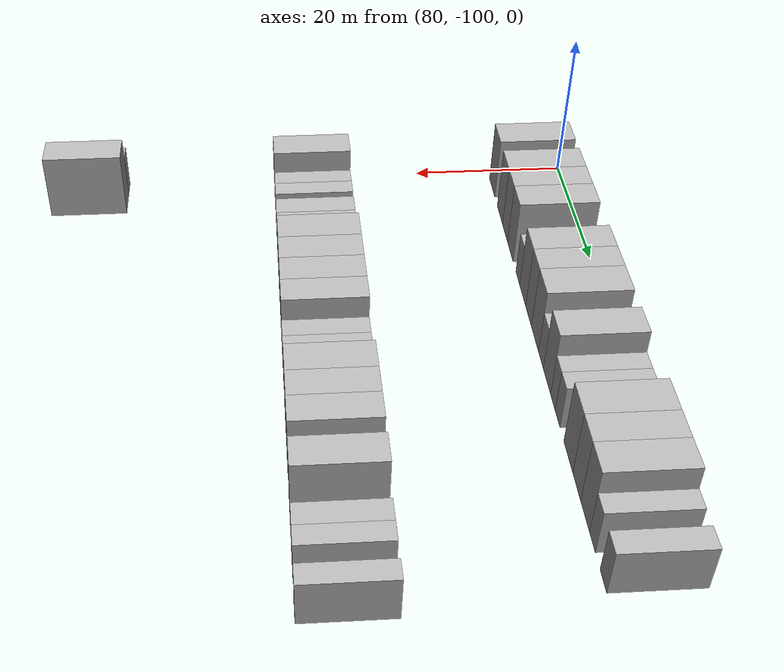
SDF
<sdf version="1.6">
 <world name="default">
  <model name="building_573">
   <static>1</static>
   <pose>85.0000 -95.9384 0 0.000000 0.000000 0.000000</pose>
   <link name="link">
    <pose>0 0 4.50 0 0 0</pose>
    <collision name="collision"><geometry><box><size>10.0000 4.3819 9.0000</size></box></geometry></collision>
    <visual name="visual">
     <cast_shadows>0</cast_shadows>
     <geometry><box><size>10.0000 4.3819 9.0000</size></box></geometry>
     <material>
      <script>
       <uri>model://HANNAS_wall/materials/scripts</uri>
       <uri>model://HANNAS_wall/materials/textures</uri>
       <name>vrc/HANNAS_wall</name>
      </script>
     </material>
    </visual>
   </link>
  </model>
  <model name="building_574">
   <static>1</static>
   <pose>85.0000 -89.6862 0 0.000000 0.000000 0.000000</pose>
   <link name="link">
    <pose>0 0 4.50 0 0 0</pose>
    <collision name="collision"><geometry><box><size>10.0000 4.1224 9.0000</size></box></geometry></collision>
    <visual name="visual">
     <cast_shadows>0</cast_shadows>
     <geometry><box><size>10.0000 4.1224 9.0000</size></box></geometry>
     <material>
      <script>
       <uri>model://HANNAS_wall/materials/scripts</uri>
       <uri>model://HANNAS_wall/materials/textures</uri>
       <name>vrc/HANNAS_wall</name>
      </script>
     </material>
    </visual>
   </link>
  </model>
  <model name="building_575">
   <static>1</static>
   <pose>85.0000 -85.7247 0 0.000000 0.000000 0.000000</pose>
   <link name="link">
    <pose>0 0 4.50 0 0 0</pose>
    <collision name="collision"><geometry><box><size>10.0000 3.8007 9.0000</size></box></geometry></collision>
    <visual name="visual">
     <cast_shadows>0</cast_shadows>
     <geometry><box><size>10.0000 3.8007 9.0000</size></box></geometry>
     <material>
      <script>
       <uri>model://HANNAS_wall/materials/scripts</uri>
       <uri>model://HANNAS_wall/materials/textures</uri>
       <name>vrc/HANNAS_wall</name>
      </script>
     </material>
    </visual>
   </link>
  </model>
  <model name="building_576">
   <static>1</static>
   <pose>85.0000 -81.8043 0 0.000000 0.000000 0.000000</pose>
   <link name="link">
    <pose>0 0 4.50 0 0 0</pose>
    <collision name="collision"><geometry><box><size>10.0000 4.0400 9.0000</size></box></geometry></collision>
    <visual name="visual">
     <cast_shadows>0</cast_shadows>
     <geometry><box><size>10.0000 4.0400 9.0000</size></box></geometry>
     <material>
      <script>
       <uri>model://HANNAS_wall/materials/scripts</uri>
       <uri>model://HANNAS_wall/materials/textures</uri>
       <name>vrc/HANNAS_wall</name>
      </script>
     </material>
    </visual>
   </link>
  </model>
  <model name="building_577">
   <static>1</static>
   <pose>85.0000 -76.4784 0 0.000000 0.000000 0.000000</pose>
   <link name="link">
    <pose>0 0 3.00 0 0 0</pose>
    <collision name="collision"><geometry><box><size>10.0000 2.6119 6.0000</size></box></geometry></collision>
    <visual name="visual">
     <cast_shadows>0</cast_shadows>
     <geometry><box><size>10.0000 2.6119 6.0000</size></box></geometry>
     <material>
      <script>
       <uri>model://HANNAS_wall/materials/scripts</uri>
       <uri>model://HANNAS_wall/materials/textures</uri>
       <name>vrc/HANNAS_wall</name>
      </script>
     </material>
    </visual>
   </link>
  </model>
  <model name="building_578">
   <static>1</static>
   <pose>85.0000 -73.1591 0 0.000000 0.000000 0.000000</pose>
   <link name="link">
    <pose>0 0 4.50 0 0 0</pose>
    <collision name="collision"><geometry><box><size>10.0000 4.0268 9.0000</size></box></geometry></collision>
    <visual name="visual">
     <cast_shadows>0</cast_shadows>
     <geometry><box><size>10.0000 4.0268 9.0000</size></box></geometry>
     <material>
      <script>
       <uri>model://HANNAS_wall/materials/scripts</uri>
       <uri>model://HANNAS_wall/materials/textures</uri>
       <name>vrc/HANNAS_wall</name>
      </script>
     </material>
    </visual>
   </link>
  </model>
  <model name="building_579">
   <static>1</static>
   <pose>85.0000 -69.3220 0 0.000000 0.000000 0.000000</pose>
   <link name="link">
    <pose>0 0 4.50 0 0 0</pose>
    <collision name="collision"><geometry><box><size>10.0000 3.6474 9.0000</size></box></geometry></collision>
    <visual name="visual">
     <cast_shadows>0</cast_shadows>
     <geometry><box><size>10.0000 3.6474 9.0000</size></box></geometry>
     <material>
      <script>
       <uri>model://HANNAS_wall/materials/scripts</uri>
       <uri>model://HANNAS_wall/materials/textures</uri>
       <name>vrc/HANNAS_wall</name>
      </script>
     </material>
    </visual>
   </link>
  </model>
  <model name="building_580">
   <static>1</static>
   <pose>85.0000 -65.3040 0 0.000000 0.000000 0.000000</pose>
   <link name="link">
    <pose>0 0 4.50 0 0 0</pose>
    <collision name="collision"><geometry><box><size>10.0000 4.3887 9.0000</size></box></geometry></collision>
    <visual name="visual">
     <cast_shadows>0</cast_shadows>
     <geometry><box><size>10.0000 4.3887 9.0000</size></box></geometry>
     <material>
      <script>
       <uri>model://HANNAS_wall/materials/scripts</uri>
       <uri>model://HANNAS_wall/materials/textures</uri>
       <name>vrc/HANNAS_wall</name>
      </script>
     </material>
    </visual>
   </link>
  </model>
  <model name="building_581">
   <static>1</static>
   <pose>85.0000 -61.6801 0 0.000000 0.000000 0.000000</pose>
   <link name="link">
    <pose>0 0 3.00 0 0 0</pose>
    <collision name="collision"><geometry><box><size>10.0000 2.8589 6.0000</size></box></geometry></collision>
    <visual name="visual">
     <cast_shadows>0</cast_shadows>
     <geometry><box><size>10.0000 2.8589 6.0000</size></box></geometry>
     <material>
      <script>
       <uri>model://HANNAS_wall/materials/scripts</uri>
       <uri>model://HANNAS_wall/materials/textures</uri>
       <name>vrc/HANNAS_wall</name>
      </script>
     </material>
    </visual>
   </link>
  </model>
  <model name="building_582">
   <static>1</static>
   <pose>85.0000 -58.1791 0 0.000000 0.000000 0.000000</pose>
   <link name="link">
    <pose>0 0 4.50 0 0 0</pose>
    <collision name="collision"><geometry><box><size>10.0000 4.1432 9.0000</size></box></geometry></collision>
    <visual name="visual">
     <cast_shadows>0</cast_shadows>
     <geometry><box><size>10.0000 4.1432 9.0000</size></box></geometry>
     <material>
      <script>
       <uri>model://HANNAS_wall/materials/scripts</uri>
       <uri>model://HANNAS_wall/materials/textures</uri>
       <name>vrc/HANNAS_wall</name>
      </script>
     </material>
    </visual>
   </link>
  </model>
  <model name="building_583">
   <static>1</static>
   <pose>85.0000 -54.8451 0 0.000000 0.000000 0.000000</pose>
   <link name="link">
    <pose>0 0 3.00 0 0 0</pose>
    <collision name="collision"><geometry><box><size>10.0000 2.5248 6.0000</size></box></geometry></collision>
    <visual name="visual">
     <cast_shadows>0</cast_shadows>
     <geometry><box><size>10.0000 2.5248 6.0000</size></box></geometry>
     <material>
      <script>
       <uri>model://HANNAS_wall/materials/scripts</uri>
       <uri>model://HANNAS_wall/materials/textures</uri>
       <name>vrc/HANNAS_wall</name>
      </script>
     </material>
    </visual>
   </link>
  </model>
  <model name="building_584">
   <static>1</static>
   <pose>85.0000 -52.3017 0 0.000000 0.000000 0.000000</pose>
   <link name="link">
    <pose>0 0 3.00 0 0 0</pose>
    <collision name="collision"><geometry><box><size>10.0000 2.5620 6.0000</size></box></geometry></collision>
    <visual name="visual">
     <cast_shadows>0</cast_shadows>
     <geometry><box><size>10.0000 2.5620 6.0000</size></box></geometry>
     <material>
      <script>
       <uri>model://HANNAS_wall/materials/scripts</uri>
       <uri>model://HANNAS_wall/materials/textures</uri>
       <name>vrc/HANNAS_wall</name>
      </script>
     </material>
    </visual>
   </link>
  </model>
  <model name="building_585">
   <static>1</static>
   <pose>85.0000 -46.7744 0 0.000000 0.000000 0.000000</pose>
   <link name="link">
    <pose>0 0 4.50 0 0 0</pose>
    <collision name="collision"><geometry><box><size>10.0000 4.4927 9.0000</size></box></geometry></collision>
    <visual name="visual">
     <cast_shadows>0</cast_shadows>
     <geometry><box><size>10.0000 4.4927 9.0000</size></box></geometry>
     <material>
      <script>
       <uri>model://HANNAS_wall/materials/scripts</uri>
       <uri>model://HANNAS_wall/materials/textures</uri>
       <name>vrc/HANNAS_wall</name>
      </script>
     </material>
    </visual>
   </link>
  </model>
  <model name="building_586">
   <static>1</static>
   <pose>85.0000 -42.6529 0 0.000000 0.000000 0.000000</pose>
   <link name="link">
    <pose>0 0 4.50 0 0 0</pose>
    <collision name="collision"><geometry><box><size>10.0000 3.7502 9.0000</size></box></geometry></collision>
    <visual name="visual">
     <cast_shadows>0</cast_shadows>
     <geometry><box><size>10.0000 3.7502 9.0000</size></box></geometry>
     <material>
      <script>
       <uri>model://HANNAS_wall/materials/scripts</uri>
       <uri>model://HANNAS_wall/materials/textures</uri>
       <name>vrc/HANNAS_wall</name>
      </script>
     </material>
    </visual>
   </link>
  </model>
  <model name="building_587">
   <static>1</static>
   <pose>85.0000 -38.7747 0 0.000000 0.000000 0.000000</pose>
   <link name="link">
    <pose>0 0 4.50 0 0 0</pose>
    <collision name="collision"><geometry><box><size>10.0000 4.0063 9.0000</size></box></geometry></collision>
    <visual name="visual">
     <cast_shadows>0</cast_shadows>
     <geometry><box><size>10.0000 4.0063 9.0000</size></box></geometry>
     <material>
      <script>
       <uri>model://HANNAS_wall/materials/scripts</uri>
       <uri>model://HANNAS_wall/materials/textures</uri>
       <name>vrc/HANNAS_wall</name>
      </script>
     </material>
    </visual>
   </link>
  </model>
  <model name="building_588">
   <static>1</static>
   <pose>85.0000 -35.5119 0 0.000000 0.000000 0.000000</pose>
   <link name="link">
    <pose>0 0 3.00 0 0 0</pose>
    <collision name="collision"><geometry><box><size>10.0000 2.5193 6.0000</size></box></geometry></collision>
    <visual name="visual">
     <cast_shadows>0</cast_shadows>
     <geometry><box><size>10.0000 2.5193 6.0000</size></box></geometry>
     <material>
      <script>
       <uri>model://HANNAS_wall/materials/scripts</uri>
       <uri>model://HANNAS_wall/materials/textures</uri>
       <name>vrc/HANNAS_wall</name>
      </script>
     </material>
    </visual>
   </link>
  </model>
  <model name="building_589">
   <static>1</static>
   <pose>85.0000 -30.8724 0 0.000000 0.000000 0.000000</pose>
   <link name="link">
    <pose>0 0 3.00 0 0 0</pose>
    <collision name="collision"><geometry><box><size>10.0000 2.7597 6.0000</size></box></geometry></collision>
    <visual name="visual">
     <cast_shadows>0</cast_shadows>
     <geometry><box><size>10.0000 2.7597 6.0000</size></box></geometry>
     <material>
      <script>
       <uri>model://HANNAS_wall/materials/scripts</uri>
       <uri>model://HANNAS_wall/materials/textures</uri>
       <name>vrc/HANNAS_wall</name>
      </script>
     </material>
    </visual>
   </link>
  </model>
  <model name="building_805">
   <static>1</static>
   <pose>115.0000 -100.1216 0 0.000000 0.000000 0.000000</pose>
   <link name="link">
    <pose>0 0 3.00 0 0 0</pose>
    <collision name="collision"><geometry><box><size>10.0000 2.4335 6.0000</size></box></geometry></collision>
    <visual name="visual">
     <cast_shadows>0</cast_shadows>
     <geometry><box><size>10.0000 2.4335 6.0000</size></box></geometry>
     <material>
      <script>
       <uri>model://HANNAS_wall/materials/scripts</uri>
       <uri>model://HANNAS_wall/materials/textures</uri>
       <name>vrc/HANNAS_wall</name>
      </script>
     </material>
    </visual>
   </link>
  </model>
  <model name="building_806">
   <static>1</static>
   <pose>115.0000 -94.8588 0 0.000000 0.000000 0.000000</pose>
   <link name="link">
    <pose>0 0 4.50 0 0 0</pose>
    <collision name="collision"><geometry><box><size>10.0000 4.0920 9.0000</size></box></geometry></collision>
    <visual name="visual">
     <cast_shadows>0</cast_shadows>
     <geometry><box><size>10.0000 4.0920 9.0000</size></box></geometry>
     <material>
      <script>
       <uri>model://HANNAS_wall/materials/scripts</uri>
       <uri>model://HANNAS_wall/materials/textures</uri>
       <name>vrc/HANNAS_wall</name>
      </script>
     </material>
    </visual>
   </link>
  </model>
  <model name="building_807">
   <static>1</static>
   <pose>115.0000 -91.5837 0 0.000000 0.000000 0.000000</pose>
   <link name="link">
    <pose>0 0 3.00 0 0 0</pose>
    <collision name="collision"><geometry><box><size>10.0000 2.4583 6.0000</size></box></geometry></collision>
    <visual name="visual">
     <cast_shadows>0</cast_shadows>
     <geometry><box><size>10.0000 2.4583 6.0000</size></box></geometry>
     <material>
      <script>
       <uri>model://HANNAS_wall/materials/scripts</uri>
       <uri>model://HANNAS_wall/materials/textures</uri>
       <name>vrc/HANNAS_wall</name>
      </script>
     </material>
    </visual>
   </link>
  </model>
  <model name="building_808">
   <static>1</static>
   <pose>115.0000 -89.1482 0 0.000000 0.000000 0.000000</pose>
   <link name="link">
    <pose>0 0 3.00 0 0 0</pose>
    <collision name="collision"><geometry><box><size>10.0000 2.4127 6.0000</size></box></geometry></collision>
    <visual name="visual">
     <cast_shadows>0</cast_shadows>
     <geometry><box><size>10.0000 2.4127 6.0000</size></box></geometry>
     <material>
      <script>
       <uri>model://HANNAS_wall/materials/scripts</uri>
       <uri>model://HANNAS_wall/materials/textures</uri>
       <name>vrc/HANNAS_wall</name>
      </script>
     </material>
    </visual>
   </link>
  </model>
  <model name="building_809">
   <static>1</static>
   <pose>115.0000 -85.4856 0 0.000000 0.000000 0.000000</pose>
   <link name="link">
    <pose>0 0 3.00 0 0 0</pose>
    <collision name="collision"><geometry><box><size>10.0000 2.9124 6.0000</size></box></geometry></collision>
    <visual name="visual">
     <cast_shadows>0</cast_shadows>
     <geometry><box><size>10.0000 2.9124 6.0000</size></box></geometry>
     <material>
      <script>
       <uri>model://HANNAS_wall/materials/scripts</uri>
       <uri>model://HANNAS_wall/materials/textures</uri>
       <name>vrc/HANNAS_wall</name>
      </script>
     </material>
    </visual>
   </link>
  </model>
  <model name="building_810">
   <static>1</static>
   <pose>115.0000 -82.7535 0 0.000000 0.000000 0.000000</pose>
   <link name="link">
    <pose>0 0 3.00 0 0 0</pose>
    <collision name="collision"><geometry><box><size>10.0000 2.5517 6.0000</size></box></geometry></collision>
    <visual name="visual">
     <cast_shadows>0</cast_shadows>
     <geometry><box><size>10.0000 2.5517 6.0000</size></box></geometry>
     <material>
      <script>
       <uri>model://HANNAS_wall/materials/scripts</uri>
       <uri>model://HANNAS_wall/materials/textures</uri>
       <name>vrc/HANNAS_wall</name>
      </script>
     </material>
    </visual>
   </link>
  </model>
  <model name="building_811">
   <static>1</static>
   <pose>115.0000 -77.3457 0 0.000000 0.000000 0.000000</pose>
   <link name="link">
    <pose>0 0 4.50 0 0 0</pose>
    <collision name="collision"><geometry><box><size>10.0000 4.2639 9.0000</size></box></geometry></collision>
    <visual name="visual">
     <cast_shadows>0</cast_shadows>
     <geometry><box><size>10.0000 4.2639 9.0000</size></box></geometry>
     <material>
      <script>
       <uri>model://HANNAS_wall/materials/scripts</uri>
       <uri>model://HANNAS_wall/materials/textures</uri>
       <name>vrc/HANNAS_wall</name>
      </script>
     </material>
    </visual>
   </link>
  </model>
  <model name="building_812">
   <static>1</static>
   <pose>115.0000 -73.2490 0 0.000000 0.000000 0.000000</pose>
   <link name="link">
    <pose>0 0 4.50 0 0 0</pose>
    <collision name="collision"><geometry><box><size>10.0000 3.9295 9.0000</size></box></geometry></collision>
    <visual name="visual">
     <cast_shadows>0</cast_shadows>
     <geometry><box><size>10.0000 3.9295 9.0000</size></box></geometry>
     <material>
      <script>
       <uri>model://HANNAS_wall/materials/scripts</uri>
       <uri>model://HANNAS_wall/materials/textures</uri>
       <name>vrc/HANNAS_wall</name>
      </script>
     </material>
    </visual>
   </link>
  </model>
  <model name="building_813">
   <static>1</static>
   <pose>115.0000 -69.3328 0 0.000000 0.000000 0.000000</pose>
   <link name="link">
    <pose>0 0 4.50 0 0 0</pose>
    <collision name="collision"><geometry><box><size>10.0000 3.9030 9.0000</size></box></geometry></collision>
    <visual name="visual">
     <cast_shadows>0</cast_shadows>
     <geometry><box><size>10.0000 3.9030 9.0000</size></box></geometry>
     <material>
      <script>
       <uri>model://HANNAS_wall/materials/scripts</uri>
       <uri>model://HANNAS_wall/materials/textures</uri>
       <name>vrc/HANNAS_wall</name>
      </script>
     </material>
    </visual>
   </link>
  </model>
  <model name="building_814">
   <static>1</static>
   <pose>115.0000 -65.5503 0 0.000000 0.000000 0.000000</pose>
   <link name="link">
    <pose>0 0 4.50 0 0 0</pose>
    <collision name="collision"><geometry><box><size>10.0000 3.6620 9.0000</size></box></geometry></collision>
    <visual name="visual">
     <cast_shadows>0</cast_shadows>
     <geometry><box><size>10.0000 3.6620 9.0000</size></box></geometry>
     <material>
      <script>
       <uri>model://HANNAS_wall/materials/scripts</uri>
       <uri>model://HANNAS_wall/materials/textures</uri>
       <name>vrc/HANNAS_wall</name>
      </script>
     </material>
    </visual>
   </link>
  </model>
  <model name="building_815">
   <static>1</static>
   <pose>115.0000 -62.4287 0 0.000000 0.000000 0.000000</pose>
   <link name="link">
    <pose>0 0 3.00 0 0 0</pose>
    <collision name="collision"><geometry><box><size>10.0000 2.5812 6.0000</size></box></geometry></collision>
    <visual name="visual">
     <cast_shadows>0</cast_shadows>
     <geometry><box><size>10.0000 2.5812 6.0000</size></box></geometry>
     <material>
      <script>
       <uri>model://HANNAS_wall/materials/scripts</uri>
       <uri>model://HANNAS_wall/materials/textures</uri>
       <name>vrc/HANNAS_wall</name>
      </script>
     </material>
    </visual>
   </link>
  </model>
  <model name="building_816">
   <static>1</static>
   <pose>115.0000 -59.8857 0 0.000000 0.000000 0.000000</pose>
   <link name="link">
    <pose>0 0 3.00 0 0 0</pose>
    <collision name="collision"><geometry><box><size>10.0000 2.5049 6.0000</size></box></geometry></collision>
    <visual name="visual">
     <cast_shadows>0</cast_shadows>
     <geometry><box><size>10.0000 2.5049 6.0000</size></box></geometry>
     <material>
      <script>
       <uri>model://HANNAS_wall/materials/scripts</uri>
       <uri>model://HANNAS_wall/materials/textures</uri>
       <name>vrc/HANNAS_wall</name>
      </script>
     </material>
    </visual>
   </link>
  </model>
  <model name="building_817">
   <static>1</static>
   <pose>115.0000 -54.6229 0 0.000000 0.000000 0.000000</pose>
   <link name="link">
    <pose>0 0 4.50 0 0 0</pose>
    <collision name="collision"><geometry><box><size>10.0000 4.0207 9.0000</size></box></geometry></collision>
    <visual name="visual">
     <cast_shadows>0</cast_shadows>
     <geometry><box><size>10.0000 4.0207 9.0000</size></box></geometry>
     <material>
      <script>
       <uri>model://HANNAS_wall/materials/scripts</uri>
       <uri>model://HANNAS_wall/materials/textures</uri>
       <name>vrc/HANNAS_wall</name>
      </script>
     </material>
    </visual>
   </link>
  </model>
  <model name="building_818">
   <static>1</static>
   <pose>115.0000 -50.7762 0 0.000000 0.000000 0.000000</pose>
   <link name="link">
    <pose>0 0 4.50 0 0 0</pose>
    <collision name="collision"><geometry><box><size>10.0000 3.6727 9.0000</size></box></geometry></collision>
    <visual name="visual">
     <cast_shadows>0</cast_shadows>
     <geometry><box><size>10.0000 3.6727 9.0000</size></box></geometry>
     <material>
      <script>
       <uri>model://HANNAS_wall/materials/scripts</uri>
       <uri>model://HANNAS_wall/materials/textures</uri>
       <name>vrc/HANNAS_wall</name>
      </script>
     </material>
    </visual>
   </link>
  </model>
  <model name="building_819">
   <static>1</static>
   <pose>115.0000 -47.1105 0 0.000000 0.000000 0.000000</pose>
   <link name="link">
    <pose>0 0 4.50 0 0 0</pose>
    <collision name="collision"><geometry><box><size>10.0000 3.6587 9.0000</size></box></geometry></collision>
    <visual name="visual">
     <cast_shadows>0</cast_shadows>
     <geometry><box><size>10.0000 3.6587 9.0000</size></box></geometry>
     <material>
      <script>
       <uri>model://HANNAS_wall/materials/scripts</uri>
       <uri>model://HANNAS_wall/materials/textures</uri>
       <name>vrc/HANNAS_wall</name>
      </script>
     </material>
    </visual>
   </link>
  </model>
  <model name="building_820">
   <static>1</static>
   <pose>115.0000 -41.3421 0 0.000000 0.000000 0.000000</pose>
   <link name="link">
    <pose>0 0 4.50 0 0 0</pose>
    <collision name="collision"><geometry><box><size>10.0000 3.8780 9.0000</size></box></geometry></collision>
    <visual name="visual">
     <cast_shadows>0</cast_shadows>
     <geometry><box><size>10.0000 3.8780 9.0000</size></box></geometry>
     <material>
      <script>
       <uri>model://HANNAS_wall/materials/scripts</uri>
       <uri>model://HANNAS_wall/materials/textures</uri>
       <name>vrc/HANNAS_wall</name>
      </script>
     </material>
    </visual>
   </link>
  </model>
  <model name="building_821">
   <static>1</static>
   <pose>115.0000 -36.0534 0 0.000000 0.000000 0.000000</pose>
   <link name="link">
    <pose>0 0 3.00 0 0 0</pose>
    <collision name="collision"><geometry><box><size>10.0000 2.6993 6.0000</size></box></geometry></collision>
    <visual name="visual">
     <cast_shadows>0</cast_shadows>
     <geometry><box><size>10.0000 2.6993 6.0000</size></box></geometry>
     <material>
      <script>
       <uri>model://HANNAS_wall/materials/scripts</uri>
       <uri>model://HANNAS_wall/materials/textures</uri>
       <name>vrc/HANNAS_wall</name>
      </script>
     </material>
    </visual>
   </link>
  </model>
  <model name="building_822">
   <static>1</static>
   <pose>115.0000 -33.4888 0 0.000000 0.000000 0.000000</pose>
   <link name="link">
    <pose>0 0 3.00 0 0 0</pose>
    <collision name="collision"><geometry><box><size>10.0000 2.4299 6.0000</size></box></geometry></collision>
    <visual name="visual">
     <cast_shadows>0</cast_shadows>
     <geometry><box><size>10.0000 2.4299 6.0000</size></box></geometry>
     <material>
      <script>
       <uri>model://HANNAS_wall/materials/scripts</uri>
       <uri>model://HANNAS_wall/materials/textures</uri>
       <name>vrc/HANNAS_wall</name>
      </script>
     </material>
    </visual>
   </link>
  </model>
  <model name="building_823">
   <static>1</static>
   <pose>115.0000 -29.0607 0 0.000000 0.000000 0.000000</pose>
   <link name="link">
    <pose>0 0 3.00 0 0 0</pose>
    <collision name="collision"><geometry><box><size>10.0000 2.4263 6.0000</size></box></geometry></collision>
    <visual name="visual">
     <cast_shadows>0</cast_shadows>
     <geometry><box><size>10.0000 2.4263 6.0000</size></box></geometry>
     <material>
      <script>
       <uri>model://HANNAS_wall/materials/scripts</uri>
       <uri>model://HANNAS_wall/materials/textures</uri>
       <name>vrc/HANNAS_wall</name>
      </script>
     </material>
    </visual>
   </link>
  </model>
  <model name="building_1043">
   <static>1</static>
   <pose>145.0000 -98.5328 0 0.000000 0.000000 0.000000</pose>
   <link name="link">
    <pose>0 0 3.00 0 0 0</pose>
    <collision name="collision"><geometry><box><size>10.0000 2.6247 6.0000</size></box></geometry></collision>
    <visual name="visual">
     <cast_shadows>0</cast_shadows>
     <geometry><box><size>10.0000 2.6247 6.0000</size></box></geometry>
     <material>
      <script>
       <uri>model://HANNAS_wall/materials/scripts</uri>
       <uri>model://HANNAS_wall/materials/textures</uri>
       <name>vrc/HANNAS_wall</name>
      </script>
     </material>
    </visual>
   </link>
  </model>
  <model name="building_1044">
   <static>1</static>
   <pose>145.0000 -95.1407 0 0.000000 0.000000 0.000000</pose>
   <link name="link">
    <pose>0 0 4.50 0 0 0</pose>
    <collision name="collision"><geometry><box><size>10.0000 4.1594 9.0000</size></box></geometry></collision>
    <visual name="visual">
     <cast_shadows>0</cast_shadows>
     <geometry><box><size>10.0000 4.1594 9.0000</size></box></geometry>
     <material>
      <script>
       <uri>model://HANNAS_wall/materials/scripts</uri>
       <uri>model://HANNAS_wall/materials/textures</uri>
       <name>vrc/HANNAS_wall</name>
      </script>
     </material>
    </visual>
   </link>
  </model>
 </world>
</sdf>
